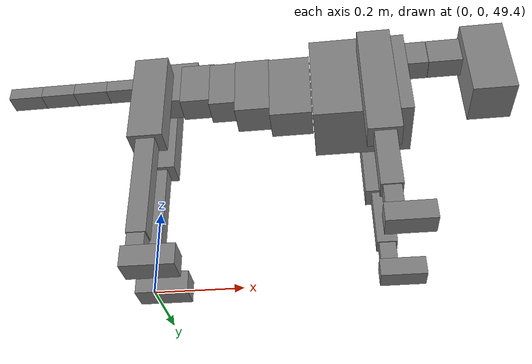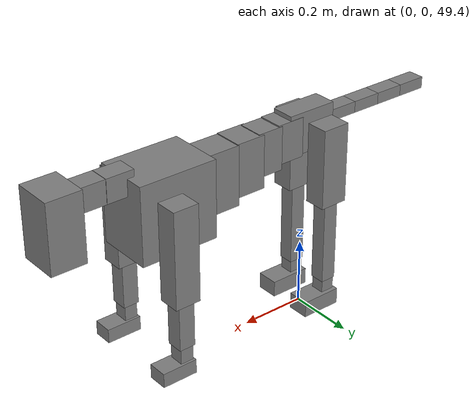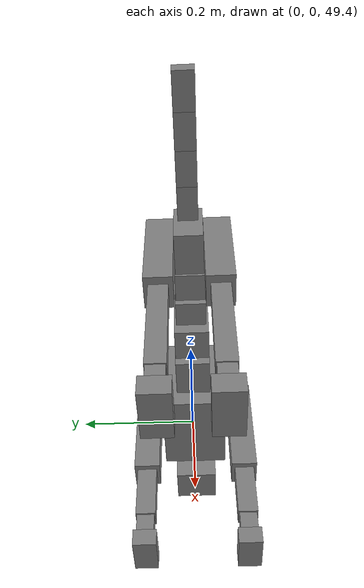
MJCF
<mujoco model="dog">

    <default>
        <joint armature="0.02" stiffness="1" damping="0.2" limited="true"/>
        <geom condim="3" friction="1 0.05 0.05" margin="0.01"/>
        <motor ctrllimited="true" ctrlrange="-1.0 1.0" forcelimited="true" gear="50"/>
    </default>

    <compiler inertiafromgeom="true" angle="radian"/>

    <option timestep="0.016" iterations="50" tolerance="1e-10" solver="Newton" jacobian="dense" cone="pyramidal"/>

    <size nconmax="20000" njmax="60000" nstack="5000000"/>
    <visual>
        <map force="0.1" zfar="30"/>
        <rgba haze="0.15 0.25 0.35 1"/>
        <quality shadowsize="2048"/>
        <global offwidth="800" offheight="800"/>
    </visual>

    <asset>
        <texture type="skybox" builtin="gradient" rgb1="0.3 0.5 0.7" rgb2="0 0 0" width="512" height="512"/>
        <texture name="texplane" type="2d" builtin="checker" rgb1=".2 .3 .4" rgb2=".1 0.15 0.2" width="512" height="512"
                 mark="cross" markrgb=".8 .8 .8"/>
        <texture name="texgeom" type="cube" builtin="flat" mark="cross" width="127" height="1278" rgb1="0.8 0.6 0.4"
                 rgb2="0.8 0.6 0.4" markrgb="1 1 1" random="0.01"/>

        <material name="matplane" reflectance="0.3" texture="texplane" texrepeat="1 1" texuniform="true"/>
        <material name="matgeom" texture="texgeom" texuniform="true" rgba="0.8 0.6 .4 1"/>
    </asset>

    <worldbody>
        <geom name="floor" pos="0 0 0" size="0 0 .25" type="plane" material="matplane" condim="3"/>

        <light directional="false" diffuse=".2 .2 .2" specular="0 0 0" pos="0 0 5" dir="0 0 -1" castshadow="false"/>
        <light mode="targetbodycom" target="torso" directional="false" diffuse=".8 .8 .8" specular="0.3 0.3 0.3"
               pos="0 0 4.0" dir="0 0 -1"/>

        <body name="root" pos="0 0 50">
            <freejoint name="root_1"/>
            <geom type="box" pos="0 0 -0.02" size="0.0774  0.0358  0.063" density="2030"/>

            <body name="spine1" pos="0.054 0 0">
                <joint name="spine1_y" axis="0 1 0" range="0 0.7" limited="true"/>
                <geom type="box" pos="0.02375 0 -0.03" size="0.04375  0.0375  0.05985" density="2030"/>

                <body name="spine2" pos="0.0612 0 0">
                    <joint name="spine2_y" axis="0 1 0" range="-0.15 0.15" limited="true"/>
                    <geom type="box" pos="0.03555  0  -0.04" size="0.04055  0.039  0.06615" density="2030"/>

                    <body name="spine3" pos="0.0730 0 0">
                        <joint name="spine3_y" axis="0 1 0" range="-0.15 0.15" limited="true"/>
                        <geom type="box" pos="0.03555  0  -0.057" size="0.04555  0.0445  0.081" density="2030"/>

                        <body name="spine4" pos="0.0780 0 0">
                            <joint name="spine4_y" axis="0 1 0" range="-0.15 0.15" limited="true"/>
                            <geom type="box" pos="0.05265  0  -0.07" size="0.05265  0.045  0.09135" density="2030"/>

                            <body name="torso" pos="0.1082 0 0">
                                <joint name="torso_y" axis="0 1 0" range="-0.15 0.15" limited="true"/>
                                <geom type="box" pos="0.11925  0  -0.085" size="0.11925  0.085  0.11745"
                                      density="2030"/>

                                <body name="neck1" pos="0.2160  0   0.0180">
                                    <joint name="neck1_y" axis="0 1 0" range="-1.2  -1" limited="true"/>
                                    <geom type="box" pos="0.0423  0  0" size="0.0423  0.03  0.036" density="2325"/>

                                    <body name="neck2" pos="0.0853  0  0">
                                        <joint name="neck2_y" axis="0 1 0" range="0.1  0" limited="true"/>
                                        <geom type="box" pos="0.0423  0  0" size="0.0423  0.03  0.036" density="2325"/>

                                        <body name="head" pos="0.0853  0  0">
                                            <joint name="head_y" axis="0 1 0" range="-0.3  -0.2" limited="true"/>
                                            <geom type="box" pos="0.0531  0  -0.055" size="0.0531  0.06  0.1044"
                                                  density="4030"/>

                                        </body>
                                    </body>
                                </body>

                                <body name="front_shoulder" pos="0.156  0   -0.0480">
                                    <joint name="front_shoulder_y" axis="0 1 0" range="-1 1.5" limited="true"/>
                                    <geom type="box" pos="0 0.13 -0.1193" size="0.0390  0.0333  0.1459" density="1158"/>
                                    <geom type="box" pos="0 -0.13 -0.1193" size="0.0390  0.0333  0.1459"
                                          density="1158"/>

                                    <body name="front_elbow" pos="0  0  -0.2386">
                                        <joint name="front_elbow_y" axis="0 1 0" range="-2 0" limited="true"/>
                                        <geom type="box" pos="0 0.13 -0.0826" size="0.0245  0.0251  0.0826"
                                              density="1081"/>
                                        <geom type="box" pos="0 -0.13 -0.0826" size="0.0245  0.0251  0.0826"
                                              density="1081"/>

                                        <body name="front_wrist" pos="0  0  -0.1651">
                                            <joint name="front_wrist_y" axis="0 1 0" range="-0.2 0" limited="true"/>
                                            <geom type="box" pos="0 0.13 -0.0306" size="0.0198  0.0220  0.0437"
                                                  density="1664"/>
                                            <geom type="box" pos="0 -0.13 -0.0306" size="0.0198  0.0220  0.0437"
                                                  density="1664"/>

                                            <body name="front_finger_end" pos="0  0  -0.0611">
                                                <joint name="front_finger_y" axis="0 1 0" range="-0.4 1"
                                                       limited="true"/>
                                                <geom type="box" pos="0.0294  0.13  -0.0066"
                                                      size="0.0538  0.0294  0.0216" density="1515"/>
                                                <geom type="box" pos="0.0294  -0.13  -0.0066"
                                                      size="0.0538  0.0294  0.0216" density="1515"/>

                                            </body>

                                        </body>
                                    </body>
                                </body>

                            </body>
                        </body>
                    </body>
                </body>
            </body>

            <body name="back_hip" pos="-0.03 0 -0.018">
                <joint name="back_hip_y" axis="0 1 0" range="-1.5 0.3" limited="true"/>
                <geom type="box" pos="0 0.07 -0.0994" size="0.0429  0.0337  0.1222" density="1154"/>
                <geom type="box" pos="0 -0.07 -0.0994" size="0.0429  0.0337  0.1222" density="1154"/>

                <body name="back_knee" pos="0  0  -0.1987">
                    <joint name="back_knee_y" axis="0 1 0" range="0 2.8" limited="true"/>
                    <geom type="box" pos="0 0.07 -0.1313" size="0.0233  0.0229  0.1469" density="1227"/>
                    <geom type="box" pos="0 -0.07 -0.1313" size="0.0233  0.0229  0.1469" density="1227"/>

                    <body name="back_ankle" pos="0  0  -0.2626">
                        <joint name="back_ankle_y" axis="0 1 0" range="-2.2 0" limited="true"/>
                        <geom type="box" pos="0 0.07 -0.0342" size="0.0207  0.0207  0.0454" density="1284"/>
                        <geom type="box" pos="0 -0.07 -0.0342" size="0.0207  0.0207  0.0454" density="1284"/>

                        <body name="back_toe_end" pos="0  0  -0.0683">
                            <joint name="back_toe_y" axis="0 1 0" range="-0.4 1" limited="true"/>
                            <geom type="box" pos="0.0335  0.07  -0.0098" size="0.0614  0.0335  0.0248" density="1515"/>
                            <geom type="box" pos="0.0335  -0.07  -0.0098" size="0.0614  0.0335  0.0248" density="1515"/>

                        </body>
                    </body>
                </body>
            </body>

            <body name="tail1" pos="-0.074 0 -0.006">
                <joint name="tail1_y" axis="0 1 0" range="-0.2 0.2" limited="true"/>
                <geom type="box" pos="-0.0536  0  0" size="0.045  0.025  0.0175" density="1587"/>

                <body name="tail2" pos="-0.09 0 0">
                    <joint name="tail2_y" axis="0 1 0" range="-0.2 0.2" limited="true"/>
                    <geom type="box" pos="-0.0536  0  0" size="0.045  0.025  0.0175" density="1587"/>

                    <body name="tail3" pos="-0.09 0 0">
                        <joint name="tail3_y" axis="0 1 0" range="-0.2 0.2" limited="true"/>
                        <geom type="box" pos="-0.0536  0  0" size="0.045  0.025  0.0175" density="1587"/>

                        <body name="tail4" pos="-0.09 0 0">
                            <joint name="tail4_y" axis="0 1 0" range="-0.2 0.2" limited="true"/>
                            <geom type="box" pos="-0.0536  0  0" size="0.045  0.025  0.0175" density="1587"/>

                        </body>
                    </body>
                </body>
            </body>
        </body>
    </worldbody>

    <actuator>
        <motor joint="spine1_y" forcerange="-150 150     "/>
        <motor joint="spine2_y" forcerange="-150 150     "/>
        <motor joint="spine3_y" forcerange="-150 150     "/>
        <motor joint="spine4_y" forcerange="-150 150     "/>
        <motor joint="torso_y" forcerange="-150 150     "/>
        <motor joint="neck1_y" forcerange="-100 100       "/>
        <motor joint="neck2_y" forcerange="-100 100       "/>
        <motor joint="head_y" forcerange="-150 150       "/>
        <motor joint="front_shoulder_y" forcerange="-128.76 193.34"/>
        <motor joint="front_elbow_y" forcerange="-124.83 157.38"/>
        <motor joint="front_wrist_y" forcerange="-109.43 66.74"/>
        <motor joint="front_finger_y" forcerange="-24.19 92.38"/>
        <motor joint="back_hip_y" forcerange="-283.15 365.69"/>
        <motor joint="back_knee_y" forcerange="-208.17 325.36"/>
        <motor joint="back_angle_y" forcerange="-115.51 115.38"/>
        <motor joint="back_toe_y" forcerange="-133.43 54.58"/>
        <motor joint="tail1_y" forcerange="-50 50     "/>
        <motor joint="tail2_y" forcerange="-50 50     "/>
        <motor joint="tail3_y" forcerange="-50 50     "/>
        <motor joint="tail4_y" forcerange="-50 50     "/>
    </actuator>
</mujoco>
